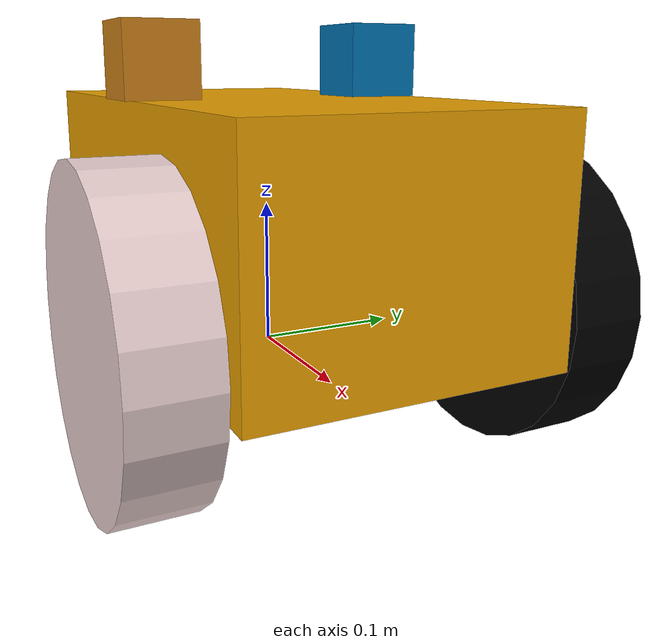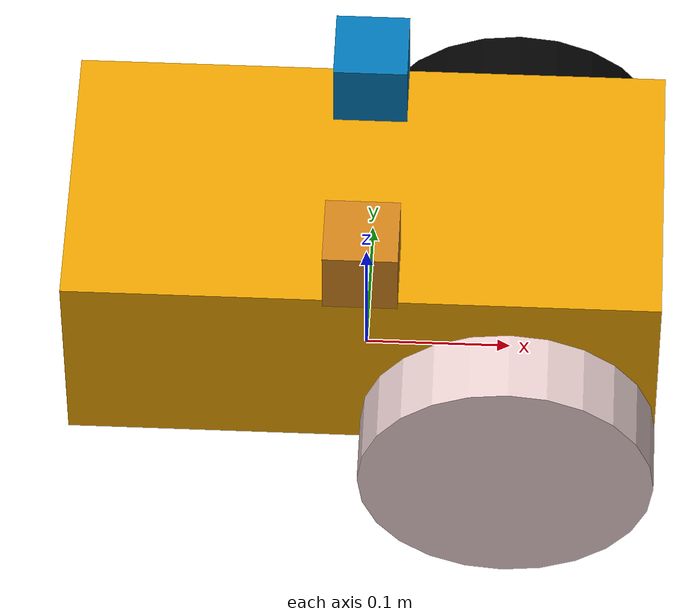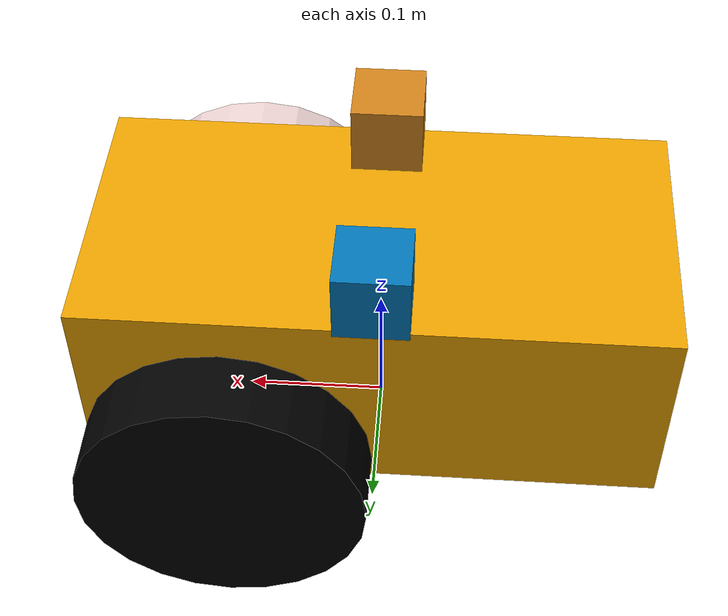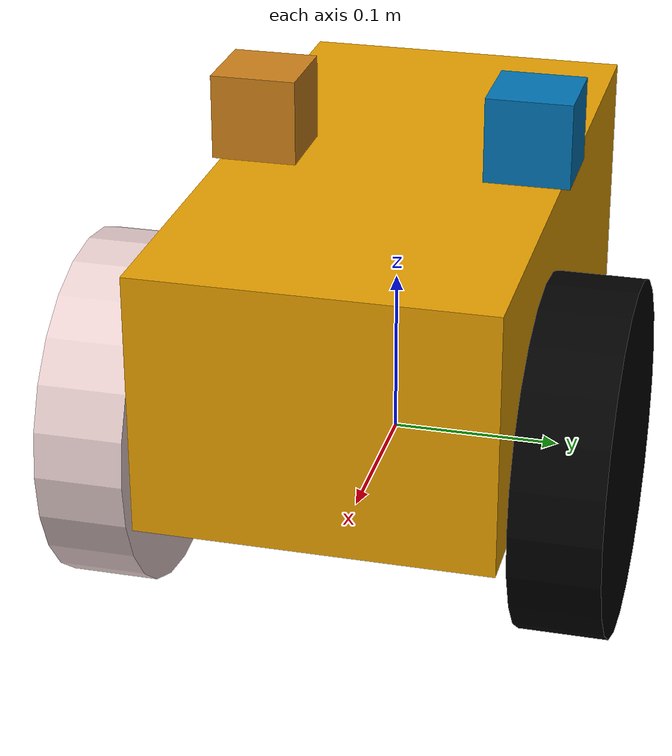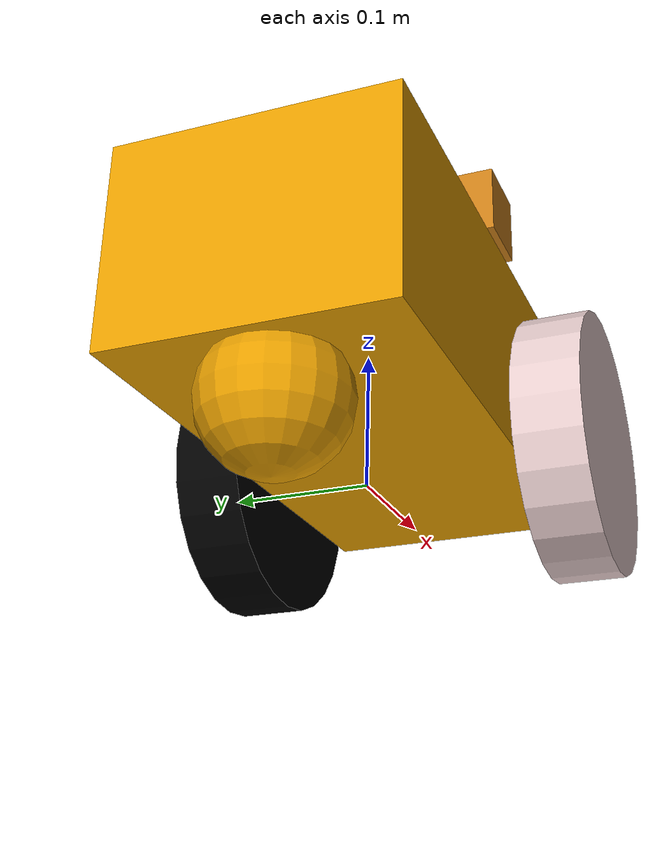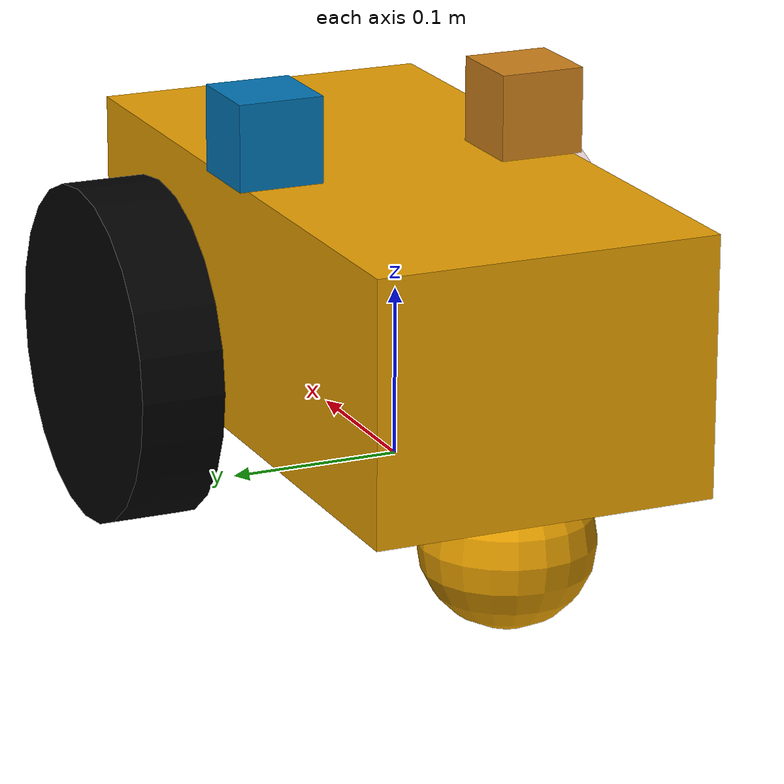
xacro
<?xml version='1.0'?>
<robot name="multicambot" xmlns:xacro="http://www.ros.org/wiki/xacro">

	<!-- Constants for robot dimensions -->
	<xacro:property name="PI" value="3.1415926535897931"/>
	<xacro:property name="mass" value="1" />
	<xacro:property name="camera_link" value="0.05" />

	<!-- Import all Gazebo-customization elements, including Gazebo colors -->
	<xacro:include filename="$(find multicambot_description)/urdf/multicambot.gazebo" />

	<!-- Used for fixing robot to Gazebo 'base_link' -->

	<link name='chassis'>
		<collision name='collision'>
			<origin xyz="0 0 .1" rpy="0 0 0" />
			<geometry>
				<box size="0.4 0.2 0.15" />
			</geometry>
		</collision>

		<visual name='visual'>
			<origin xyz="0 0 .1" rpy="0 0 0" />
			<geometry>
				<box size="0.4 0.2 0.15" />
			</geometry>
		</visual>

		<collision name='caster_collision'>
			<origin xyz="-0.15 0 0" rpy="0 0 0" />

			<geometry>
				<sphere radius="0.05" />
			</geometry>
		</collision>

		<visual name='caster_visual'>
			<origin xyz="-0.15 0 0" rpy="0 0 0" />

			<geometry>
				<sphere radius="0.05" />
			</geometry>
		</visual>
	</link>

	<link name="left_wheel">
		<collision>
			<origin xyz="0.1 0.13 0.1" rpy="0 1.5707 1.5707" />
			<geometry>
				<cylinder radius="0.1" length="0.05" />
			</geometry>
		</collision>
		<visual>
			<origin xyz="0.1 0.13 0.1" rpy="0 1.5707 1.5707" />
			<geometry>
				<cylinder radius="0.1" length="0.05" />
			</geometry>
			<material name="black">
				<color rgba="0 0 0 1" />
			</material>
		</visual>
	</link>

	<link name="right_wheel">
		<collision>
			<origin xyz="0.1 -0.13 0.1" rpy="0 1.5707 1.5707" />
			<geometry>
				<cylinder radius="0.1" length="0.05" />
			</geometry>
		</collision>
		<visual>
			<origin xyz="0.1 -0.13 0.1" rpy="0 1.5707 1.5707" />
			<geometry>
				<cylinder radius="0.1" length="0.05" />
			</geometry>
			<material name="brown">
				<color rgba="0.9 0.8 0.8 1" />
			</material>
		</visual>
	</link>

	<!-- Camera -->

	<link name="camera_left0">
		<inertial>
			<mass value="0.1" />
			<inertia ixx="0.000166667" iyy="0.000166667" izz="0.000166667" ixy="0" ixz="0" iyz="0" />
		</inertial>
		<collision>
			<origin xyz="0 0 0" rpy="0 0 0" />
			<geometry>
				<box size="${camera_link} ${camera_link} ${camera_link}" />
			</geometry>
		</collision>
		<visual>
			<origin xyz="0 0 0" rpy="0 0 0" />
			<geometry>
				<box size="${camera_link} ${camera_link} ${camera_link}" />
			</geometry>
			<material name="orange">
				<color rgba="0.8 0.5 0.1 1" />
			</material>
		</visual>
	</link>

	<link name="camera_right0">
		<inertial>
			<mass value="0.1" />
			<inertia ixx="0.000166667" iyy="0.000166667" izz="0.000166667" ixy="0" ixz="0" iyz="0" />
		</inertial>
		<collision>
			<origin xyz="0 0 0" rpy="0 0 0" />
			<geometry>
				<box size="${camera_link} ${camera_link} ${camera_link}" />
			</geometry>
		</collision>
		<visual>
			<origin xyz="0 0 0" rpy="0 0 0" />
			<geometry>
				<box size="${camera_link} ${camera_link} ${camera_link}" />
			</geometry>
		</visual>
	</link>

 	<joint name="left_wheel_hinge" type="fixed">
		<origin xyz="0 0 -0.05" rpy="0 0 0" />
		<parent link="chassis" />
		<child link="left_wheel" />
		<axis xyz="0 1 0" />
	</joint>

	<joint name="right_wheel_hinge" type="fixed">
		<origin xyz="0 0 -0.05" rpy="0 0 0" />
		<parent link="chassis" />
		<child link="right_wheel" />
		<axis xyz="0 1 0" />
	</joint>

	<joint name="camera_left0_joint" type="fixed">
		<axis xyz="0 1 0" />
		<origin xyz="0 -0.08 0.2" rpy="0 0 ${-PI/2}" />
		<parent link="chassis" />
		<child link="camera_left0" />
	</joint>

	<joint name="camera_right0_joint" type="fixed">
		<axis xyz="0 1 0" />
		<origin xyz="0 0.08 0.2" rpy="0 0 ${PI/2}" />
		<parent link="chassis" />
		<child link="camera_right0" />
	</joint>

</robot>
